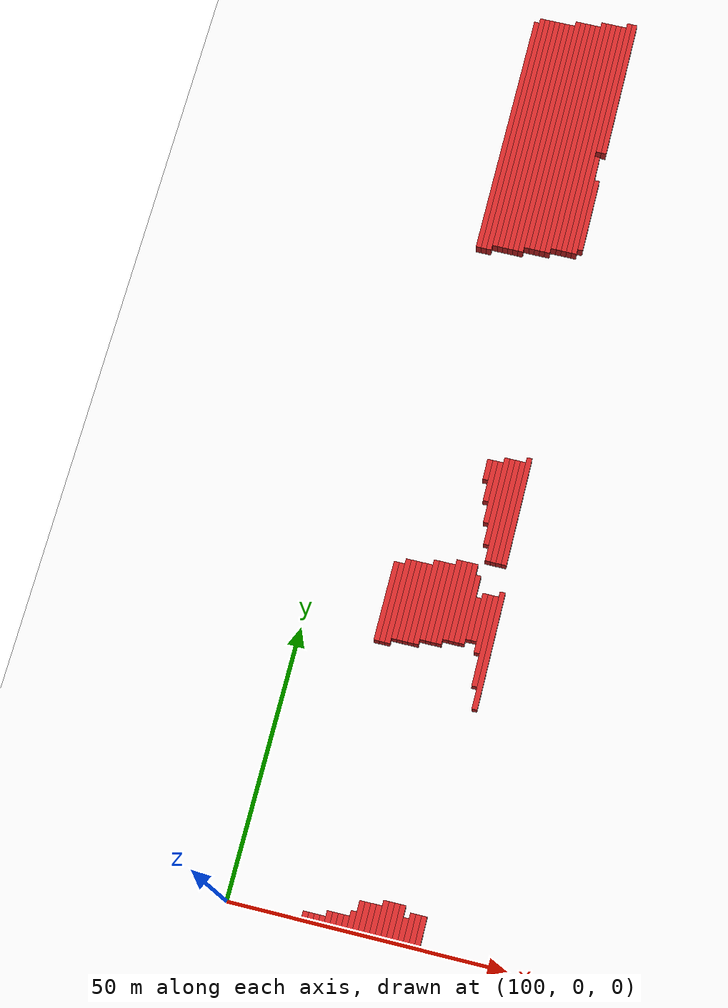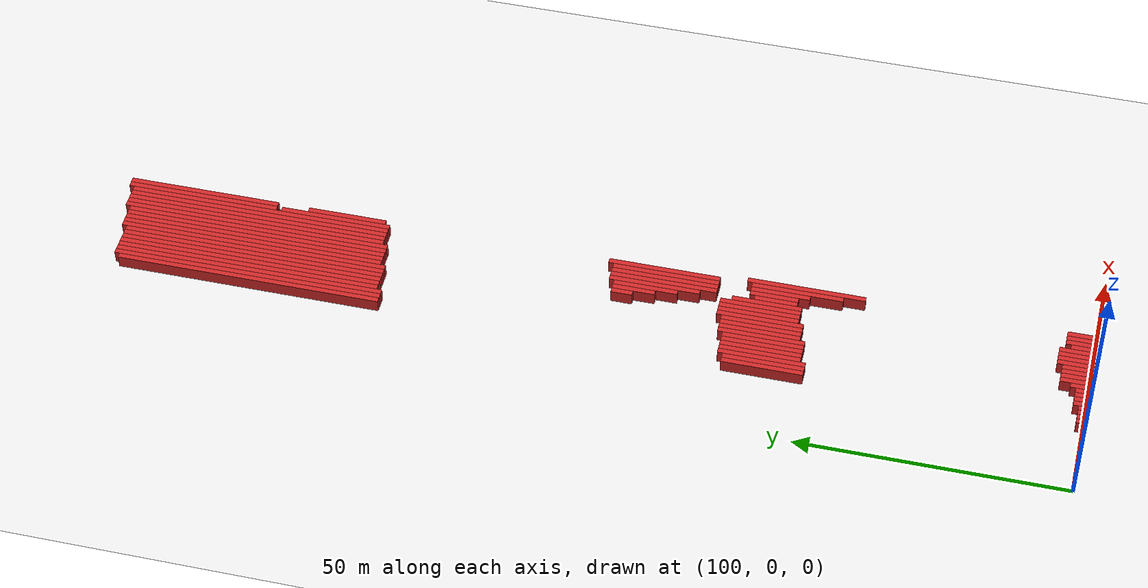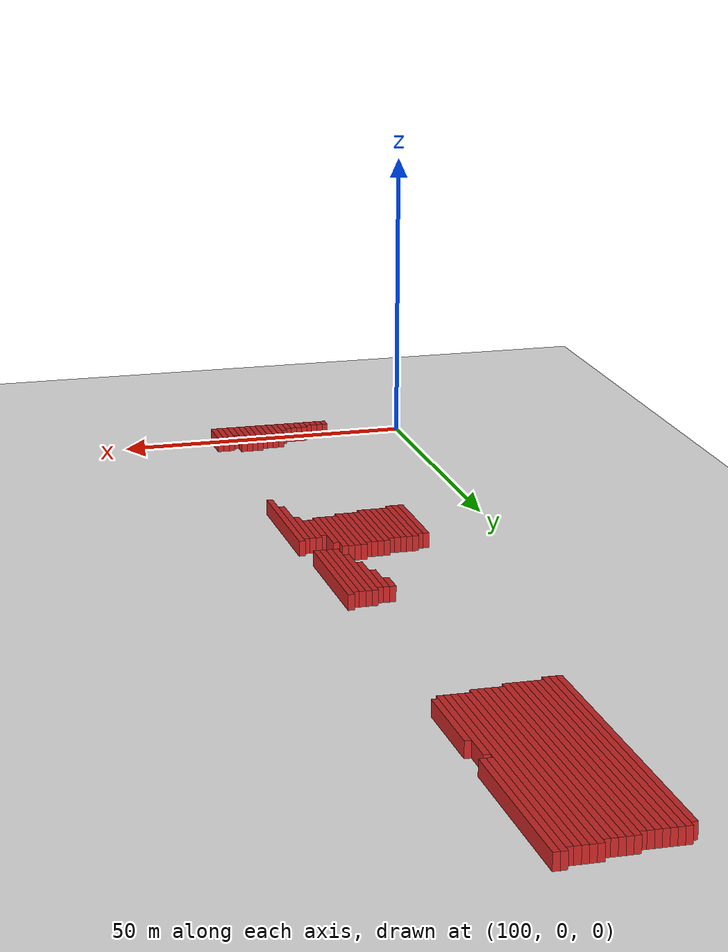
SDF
<sdf version="1.4">
 <world name="1_wall">
  <model name="ground_plane">
   <static>1</static>
   <link name="link">
    <collision name="collision">
     <geometry><plane><normal>0 0 1</normal><size>1000 1000</size></plane></geometry>
     <surface><friction><ode><mu>100</mu><mu2>50</mu2></ode></friction></surface>
    </collision>
    <visual name="visual">
     <cast_shadows>0</cast_shadows>
     <geometry><plane><normal>0 0 1</normal><size>10000 10000</size></plane></geometry>
     <material>
      <script><uri>file://media/materials/scripts/gazebo.material</uri><name>Gazebo/White</name></script>
     </material>
    </visual>
    <velocity_decay><linear>0</linear><angular>0</angular></velocity_decay>
   </link>
  </model>
  <model name="Wall_215">
   <static>1</static>
   <link name="Wall_215">
    <collision name="Wall_Collision_215">
     <geometry><box><size>2.0 1.0 2.5</size></box></geometry>
     <pose>0 0 1.25 0 -0 0</pose>
    </collision>
    <visual name="Wall_Visual_215">
     <pose>0 0 1.25 0 -0 0</pose>
     <geometry><box><size>2.0 1.0 2.5</size></box></geometry>
     <material>
      <script><uri>file://media/materials/scripts/gazebo.material</uri><name>Gazebo/Red</name></script>
     </material>
    </visual>
    <velocity_decay><linear>0</linear><angular>0</angular></velocity_decay>
    <pose>114.0 0.5 0 0 0 1.5707963267948966</pose>
   </link>
  </model>
  <model name="Wall_216">
   <static>1</static>
   <link name="Wall_216">
    <collision name="Wall_Collision_216">
     <geometry><box><size>15.0 1.0 2.5</size></box></geometry>
     <pose>0 0 1.25 0 -0 0</pose>
    </collision>
    <visual name="Wall_Visual_216">
     <pose>0 0 1.25 0 -0 0</pose>
     <geometry><box><size>15.0 1.0 2.5</size></box></geometry>
     <material>
      <script><uri>file://media/materials/scripts/gazebo.material</uri><name>Gazebo/Red</name></script>
     </material>
    </visual>
    <velocity_decay><linear>0</linear><angular>0</angular></velocity_decay>
    <pose>114.0 58.0 0 0 0 1.5707963267948966</pose>
   </link>
  </model>
  <model name="Wall_217">
   <static>1</static>
   <link name="Wall_217">
    <collision name="Wall_Collision_217">
     <geometry><box><size>50.0 1.0 2.5</size></box></geometry>
     <pose>0 0 1.25 0 -0 0</pose>
    </collision>
    <visual name="Wall_Visual_217">
     <pose>0 0 1.25 0 -0 0</pose>
     <geometry><box><size>50.0 1.0 2.5</size></box></geometry>
     <material>
      <script><uri>file://media/materials/scripts/gazebo.material</uri><name>Gazebo/Red</name></script>
     </material>
    </visual>
    <velocity_decay><linear>0</linear><angular>0</angular></velocity_decay>
    <pose>114.0 154.5 0 0 0 1.5707963267948966</pose>
   </link>
  </model>
  <model name="Wall_218">
   <static>1</static>
   <link name="Wall_218">
    <collision name="Wall_Collision_218">
     <geometry><box><size>2.0 1.0 2.5</size></box></geometry>
     <pose>0 0 1.25 0 -0 0</pose>
    </collision>
    <visual name="Wall_Visual_218">
     <pose>0 0 1.25 0 -0 0</pose>
     <geometry><box><size>2.0 1.0 2.5</size></box></geometry>
     <material>
      <script><uri>file://media/materials/scripts/gazebo.material</uri><name>Gazebo/Red</name></script>
     </material>
    </visual>
    <velocity_decay><linear>0</linear><angular>0</angular></velocity_decay>
    <pose>115.0 0.5 0 0 0 1.5707963267948966</pose>
   </link>
  </model>
  <model name="Wall_219">
   <static>1</static>
   <link name="Wall_219">
    <collision name="Wall_Collision_219">
     <geometry><box><size>15.0 1.0 2.5</size></box></geometry>
     <pose>0 0 1.25 0 -0 0</pose>
    </collision>
    <visual name="Wall_Visual_219">
     <pose>0 0 1.25 0 -0 0</pose>
     <geometry><box><size>15.0 1.0 2.5</size></box></geometry>
     <material>
      <script><uri>file://media/materials/scripts/gazebo.material</uri><name>Gazebo/Red</name></script>
     </material>
    </visual>
    <velocity_decay><linear>0</linear><angular>0</angular></velocity_decay>
    <pose>115.0 58.0 0 0 0 1.5707963267948966</pose>
   </link>
  </model>
  <model name="Wall_220">
   <static>1</static>
   <link name="Wall_220">
    <collision name="Wall_Collision_220">
     <geometry><box><size>51.0 1.0 2.5</size></box></geometry>
     <pose>0 0 1.25 0 -0 0</pose>
    </collision>
    <visual name="Wall_Visual_220">
     <pose>0 0 1.25 0 -0 0</pose>
     <geometry><box><size>51.0 1.0 2.5</size></box></geometry>
     <material>
      <script><uri>file://media/materials/scripts/gazebo.material</uri><name>Gazebo/Red</name></script>
     </material>
    </visual>
    <velocity_decay><linear>0</linear><angular>0</angular></velocity_decay>
    <pose>115.0 155.0 0 0 0 1.5707963267948966</pose>
   </link>
  </model>
  <model name="Wall_221">
   <static>1</static>
   <link name="Wall_221">
    <collision name="Wall_Collision_221">
     <geometry><box><size>2.0 1.0 2.5</size></box></geometry>
     <pose>0 0 1.25 0 -0 0</pose>
    </collision>
    <visual name="Wall_Visual_221">
     <pose>0 0 1.25 0 -0 0</pose>
     <geometry><box><size>2.0 1.0 2.5</size></box></geometry>
     <material>
      <script><uri>file://media/materials/scripts/gazebo.material</uri><name>Gazebo/Red</name></script>
     </material>
    </visual>
    <velocity_decay><linear>0</linear><angular>0</angular></velocity_decay>
    <pose>116.0 0.5 0 0 0 1.5707963267948966</pose>
   </link>
  </model>
  <model name="Wall_222">
   <static>1</static>
   <link name="Wall_222">
    <collision name="Wall_Collision_222">
     <geometry><box><size>16.0 1.0 2.5</size></box></geometry>
     <pose>0 0 1.25 0 -0 0</pose>
    </collision>
    <visual name="Wall_Visual_222">
     <pose>0 0 1.25 0 -0 0</pose>
     <geometry><box><size>16.0 1.0 2.5</size></box></geometry>
     <material>
      <script><uri>file://media/materials/scripts/gazebo.material</uri><name>Gazebo/Red</name></script>
     </material>
    </visual>
    <velocity_decay><linear>0</linear><angular>0</angular></velocity_decay>
    <pose>116.0 58.5 0 0 0 1.5707963267948966</pose>
   </link>
  </model>
  <model name="Wall_223">
   <static>1</static>
   <link name="Wall_223">
    <collision name="Wall_Collision_223">
     <geometry><box><size>51.0 1.0 2.5</size></box></geometry>
     <pose>0 0 1.25 0 -0 0</pose>
    </collision>
    <visual name="Wall_Visual_223">
     <pose>0 0 1.25 0 -0 0</pose>
     <geometry><box><size>51.0 1.0 2.5</size></box></geometry>
     <material>
      <script><uri>file://media/materials/scripts/gazebo.material</uri><name>Gazebo/Red</name></script>
     </material>
    </visual>
    <velocity_decay><linear>0</linear><angular>0</angular></velocity_decay>
    <pose>116.0 155.0 0 0 0 1.5707963267948966</pose>
   </link>
  </model>
  <model name="Wall_224">
   <static>1</static>
   <link name="Wall_224">
    <collision name="Wall_Collision_224">
     <geometry><box><size>2.0 1.0 2.5</size></box></geometry>
     <pose>0 0 1.25 0 -0 0</pose>
    </collision>
    <visual name="Wall_Visual_224">
     <pose>0 0 1.25 0 -0 0</pose>
     <geometry><box><size>2.0 1.0 2.5</size></box></geometry>
     <material>
      <script><uri>file://media/materials/scripts/gazebo.material</uri><name>Gazebo/Red</name></script>
     </material>
    </visual>
    <velocity_decay><linear>0</linear><angular>0</angular></velocity_decay>
    <pose>117.0 0.5 0 0 0 1.5707963267948966</pose>
   </link>
  </model>
  <model name="Wall_225">
   <static>1</static>
   <link name="Wall_225">
    <collision name="Wall_Collision_225">
     <geometry><box><size>15.0 1.0 2.5</size></box></geometry>
     <pose>0 0 1.25 0 -0 0</pose>
    </collision>
    <visual name="Wall_Visual_225">
     <pose>0 0 1.25 0 -0 0</pose>
     <geometry><box><size>15.0 1.0 2.5</size></box></geometry>
     <material>
      <script><uri>file://media/materials/scripts/gazebo.material</uri><name>Gazebo/Red</name></script>
     </material>
    </visual>
    <velocity_decay><linear>0</linear><angular>0</angular></velocity_decay>
    <pose>117.0 59.0 0 0 0 1.5707963267948966</pose>
   </link>
  </model>
  <model name="Wall_226">
   <static>1</static>
   <link name="Wall_226">
    <collision name="Wall_Collision_226">
     <geometry><box><size>50.0 1.0 2.5</size></box></geometry>
     <pose>0 0 1.25 0 -0 0</pose>
    </collision>
    <visual name="Wall_Visual_226">
     <pose>0 0 1.25 0 -0 0</pose>
     <geometry><box><size>50.0 1.0 2.5</size></box></geometry>
     <material>
      <script><uri>file://media/materials/scripts/gazebo.material</uri><name>Gazebo/Red</name></script>
     </material>
    </visual>
    <velocity_decay><linear>0</linear><angular>0</angular></velocity_decay>
    <pose>117.0 155.5 0 0 0 1.5707963267948966</pose>
   </link>
  </model>
  <model name="Wall_227">
   <static>1</static>
   <link name="Wall_227">
    <collision name="Wall_Collision_227">
     <geometry><box><size>3.0 1.0 2.5</size></box></geometry>
     <pose>0 0 1.25 0 -0 0</pose>
    </collision>
    <visual name="Wall_Visual_227">
     <pose>0 0 1.25 0 -0 0</pose>
     <geometry><box><size>3.0 1.0 2.5</size></box></geometry>
     <material>
      <script><uri>file://media/materials/scripts/gazebo.material</uri><name>Gazebo/Red</name></script>
     </material>
    </visual>
    <velocity_decay><linear>0</linear><angular>0</angular></velocity_decay>
    <pose>118.0 1.0 0 0 0 1.5707963267948966</pose>
   </link>
  </model>
  <model name="Wall_228">
   <static>1</static>
   <link name="Wall_228">
    <collision name="Wall_Collision_228">
     <geometry><box><size>15.0 1.0 2.5</size></box></geometry>
     <pose>0 0 1.25 0 -0 0</pose>
    </collision>
    <visual name="Wall_Visual_228">
     <pose>0 0 1.25 0 -0 0</pose>
     <geometry><box><size>15.0 1.0 2.5</size></box></geometry>
     <material>
      <script><uri>file://media/materials/scripts/gazebo.material</uri><name>Gazebo/Red</name></script>
     </material>
    </visual>
    <velocity_decay><linear>0</linear><angular>0</angular></velocity_decay>
    <pose>118.0 59.0 0 0 0 1.5707963267948966</pose>
   </link>
  </model>
  <model name="Wall_229">
   <static>1</static>
   <link name="Wall_229">
    <collision name="Wall_Collision_229">
     <geometry><box><size>50.0 1.0 2.5</size></box></geometry>
     <pose>0 0 1.25 0 -0 0</pose>
    </collision>
    <visual name="Wall_Visual_229">
     <pose>0 0 1.25 0 -0 0</pose>
     <geometry><box><size>50.0 1.0 2.5</size></box></geometry>
     <material>
      <script><uri>file://media/materials/scripts/gazebo.material</uri><name>Gazebo/Red</name></script>
     </material>
    </visual>
    <velocity_decay><linear>0</linear><angular>0</angular></velocity_decay>
    <pose>118.0 155.5 0 0 0 1.5707963267948966</pose>
   </link>
  </model>
  <model name="Wall_230">
   <static>1</static>
   <link name="Wall_230">
    <collision name="Wall_Collision_230">
     <geometry><box><size>3.0 1.0 2.5</size></box></geometry>
     <pose>0 0 1.25 0 -0 0</pose>
    </collision>
    <visual name="Wall_Visual_230">
     <pose>0 0 1.25 0 -0 0</pose>
     <geometry><box><size>3.0 1.0 2.5</size></box></geometry>
     <material>
      <script><uri>file://media/materials/scripts/gazebo.material</uri><name>Gazebo/Red</name></script>
     </material>
    </visual>
    <velocity_decay><linear>0</linear><angular>0</angular></velocity_decay>
    <pose>119.0 1.0 0 0 0 1.5707963267948966</pose>
   </link>
  </model>
  <model name="Wall_231">
   <static>1</static>
   <link name="Wall_231">
    <collision name="Wall_Collision_231">
     <geometry><box><size>15.0 1.0 2.5</size></box></geometry>
     <pose>0 0 1.25 0 -0 0</pose>
    </collision>
    <visual name="Wall_Visual_231">
     <pose>0 0 1.25 0 -0 0</pose>
     <geometry><box><size>15.0 1.0 2.5</size></box></geometry>
     <material>
      <script><uri>file://media/materials/scripts/gazebo.material</uri><name>Gazebo/Red</name></script>
     </material>
    </visual>
    <velocity_decay><linear>0</linear><angular>0</angular></velocity_decay>
    <pose>119.0 59.0 0 0 0 1.5707963267948966</pose>
   </link>
  </model>
  <model name="Wall_232">
   <static>1</static>
   <link name="Wall_232">
    <collision name="Wall_Collision_232">
     <geometry><box><size>50.0 1.0 2.5</size></box></geometry>
     <pose>0 0 1.25 0 -0 0</pose>
    </collision>
    <visual name="Wall_Visual_232">
     <pose>0 0 1.25 0 -0 0</pose>
     <geometry><box><size>50.0 1.0 2.5</size></box></geometry>
     <material>
      <script><uri>file://media/materials/scripts/gazebo.material</uri><name>Gazebo/Red</name></script>
     </material>
    </visual>
    <velocity_decay><linear>0</linear><angular>0</angular></velocity_decay>
    <pose>119.0 155.5 0 0 0 1.5707963267948966</pose>
   </link>
  </model>
  <model name="Wall_233">
   <static>1</static>
   <link name="Wall_233">
    <collision name="Wall_Collision_233">
     <geometry><box><size>3.0 1.0 2.5</size></box></geometry>
     <pose>0 0 1.25 0 -0 0</pose>
    </collision>
    <visual name="Wall_Visual_233">
     <pose>0 0 1.25 0 -0 0</pose>
     <geometry><box><size>3.0 1.0 2.5</size></box></geometry>
     <material>
      <script><uri>file://media/materials/scripts/gazebo.material</uri><name>Gazebo/Red</name></script>
     </material>
    </visual>
    <velocity_decay><linear>0</linear><angular>0</angular></velocity_decay>
    <pose>120.0 1.0 0 0 0 1.5707963267948966</pose>
   </link>
  </model>
  <model name="Wall_234">
   <static>1</static>
   <link name="Wall_234">
    <collision name="Wall_Collision_234">
     <geometry><box><size>15.0 1.0 2.5</size></box></geometry>
     <pose>0 0 1.25 0 -0 0</pose>
    </collision>
    <visual name="Wall_Visual_234">
     <pose>0 0 1.25 0 -0 0</pose>
     <geometry><box><size>15.0 1.0 2.5</size></box></geometry>
     <material>
      <script><uri>file://media/materials/scripts/gazebo.material</uri><name>Gazebo/Red</name></script>
     </material>
    </visual>
    <velocity_decay><linear>0</linear><angular>0</angular></velocity_decay>
    <pose>120.0 59.0 0 0 0 1.5707963267948966</pose>
   </link>
  </model>
  <model name="Wall_235">
   <static>1</static>
   <link name="Wall_235">
    <collision name="Wall_Collision_235">
     <geometry><box><size>50.0 1.0 2.5</size></box></geometry>
     <pose>0 0 1.25 0 -0 0</pose>
    </collision>
    <visual name="Wall_Visual_235">
     <pose>0 0 1.25 0 -0 0</pose>
     <geometry><box><size>50.0 1.0 2.5</size></box></geometry>
     <material>
      <script><uri>file://media/materials/scripts/gazebo.material</uri><name>Gazebo/Red</name></script>
     </material>
    </visual>
    <velocity_decay><linear>0</linear><angular>0</angular></velocity_decay>
    <pose>120.0 155.5 0 0 0 1.5707963267948966</pose>
   </link>
  </model>
  <model name="Wall_236">
   <static>1</static>
   <link name="Wall_236">
    <collision name="Wall_Collision_236">
     <geometry><box><size>3.0 1.0 2.5</size></box></geometry>
     <pose>0 0 1.25 0 -0 0</pose>
    </collision>
    <visual name="Wall_Visual_236">
     <pose>0 0 1.25 0 -0 0</pose>
     <geometry><box><size>3.0 1.0 2.5</size></box></geometry>
     <material>
      <script><uri>file://media/materials/scripts/gazebo.material</uri><name>Gazebo/Red</name></script>
     </material>
    </visual>
    <velocity_decay><linear>0</linear><angular>0</angular></velocity_decay>
    <pose>121.0 1.0 0 0 0 1.5707963267948966</pose>
   </link>
  </model>
  <model name="Wall_237">
   <static>1</static>
   <link name="Wall_237">
    <collision name="Wall_Collision_237">
     <geometry><box><size>16.0 1.0 2.5</size></box></geometry>
     <pose>0 0 1.25 0 -0 0</pose>
    </collision>
    <visual name="Wall_Visual_237">
     <pose>0 0 1.25 0 -0 0</pose>
     <geometry><box><size>16.0 1.0 2.5</size></box></geometry>
     <material>
      <script><uri>file://media/materials/scripts/gazebo.material</uri><name>Gazebo/Red</name></script>
     </material>
    </visual>
    <velocity_decay><linear>0</linear><angular>0</angular></velocity_decay>
    <pose>121.0 59.5 0 0 0 1.5707963267948966</pose>
   </link>
  </model>
  <model name="Wall_238">
   <static>1</static>
   <link name="Wall_238">
    <collision name="Wall_Collision_238">
     <geometry><box><size>50.0 1.0 2.5</size></box></geometry>
     <pose>0 0 1.25 0 -0 0</pose>
    </collision>
    <visual name="Wall_Visual_238">
     <pose>0 0 1.25 0 -0 0</pose>
     <geometry><box><size>50.0 1.0 2.5</size></box></geometry>
     <material>
      <script><uri>file://media/materials/scripts/gazebo.material</uri><name>Gazebo/Red</name></script>
     </material>
    </visual>
    <velocity_decay><linear>0</linear><angular>0</angular></velocity_decay>
    <pose>121.0 155.5 0 0 0 1.5707963267948966</pose>
   </link>
  </model>
  <model name="Wall_239">
   <static>1</static>
   <link name="Wall_239">
    <collision name="Wall_Collision_239">
     <geometry><box><size>4.0 1.0 2.5</size></box></geometry>
     <pose>0 0 1.25 0 -0 0</pose>
    </collision>
    <visual name="Wall_Visual_239">
     <pose>0 0 1.25 0 -0 0</pose>
     <geometry><box><size>4.0 1.0 2.5</size></box></geometry>
     <material>
      <script><uri>file://media/materials/scripts/gazebo.material</uri><name>Gazebo/Red</name></script>
     </material>
    </visual>
    <velocity_decay><linear>0</linear><angular>0</angular></velocity_decay>
    <pose>122.0 1.5 0 0 0 1.5707963267948966</pose>
   </link>
  </model>
  <model name="Wall_240">
   <static>1</static>
   <link name="Wall_240">
    <collision name="Wall_Collision_240">
     <geometry><box><size>15.0 1.0 2.5</size></box></geometry>
     <pose>0 0 1.25 0 -0 0</pose>
    </collision>
    <visual name="Wall_Visual_240">
     <pose>0 0 1.25 0 -0 0</pose>
     <geometry><box><size>15.0 1.0 2.5</size></box></geometry>
     <material>
      <script><uri>file://media/materials/scripts/gazebo.material</uri><name>Gazebo/Red</name></script>
     </material>
    </visual>
    <velocity_decay><linear>0</linear><angular>0</angular></velocity_decay>
    <pose>122.0 60.0 0 0 0 1.5707963267948966</pose>
   </link>
  </model>
  <model name="Wall_241">
   <static>1</static>
   <link name="Wall_241">
    <collision name="Wall_Collision_241">
     <geometry><box><size>51.0 1.0 2.5</size></box></geometry>
     <pose>0 0 1.25 0 -0 0</pose>
    </collision>
    <visual name="Wall_Visual_241">
     <pose>0 0 1.25 0 -0 0</pose>
     <geometry><box><size>51.0 1.0 2.5</size></box></geometry>
     <material>
      <script><uri>file://media/materials/scripts/gazebo.material</uri><name>Gazebo/Red</name></script>
     </material>
    </visual>
    <velocity_decay><linear>0</linear><angular>0</angular></velocity_decay>
    <pose>122.0 156.0 0 0 0 1.5707963267948966</pose>
   </link>
  </model>
  <model name="Wall_242">
   <static>1</static>
   <link name="Wall_242">
    <collision name="Wall_Collision_242">
     <geometry><box><size>6.0 1.0 2.5</size></box></geometry>
     <pose>0 0 1.25 0 -0 0</pose>
    </collision>
    <visual name="Wall_Visual_242">
     <pose>0 0 1.25 0 -0 0</pose>
     <geometry><box><size>6.0 1.0 2.5</size></box></geometry>
     <material>
      <script><uri>file://media/materials/scripts/gazebo.material</uri><name>Gazebo/Red</name></script>
     </material>
    </visual>
    <velocity_decay><linear>0</linear><angular>0</angular></velocity_decay>
    <pose>123.0 2.5 0 0 0 1.5707963267948966</pose>
   </link>
  </model>
  <model name="Wall_243">
   <static>1</static>
   <link name="Wall_243">
    <collision name="Wall_Collision_243">
     <geometry><box><size>15.0 1.0 2.5</size></box></geometry>
     <pose>0 0 1.25 0 -0 0</pose>
    </collision>
    <visual name="Wall_Visual_243">
     <pose>0 0 1.25 0 -0 0</pose>
     <geometry><box><size>15.0 1.0 2.5</size></box></geometry>
     <material>
      <script><uri>file://media/materials/scripts/gazebo.material</uri><name>Gazebo/Red</name></script>
     </material>
    </visual>
    <velocity_decay><linear>0</linear><angular>0</angular></velocity_decay>
    <pose>123.0 60.0 0 0 0 1.5707963267948966</pose>
   </link>
  </model>
  <model name="Wall_244">
   <static>1</static>
   <link name="Wall_244">
    <collision name="Wall_Collision_244">
     <geometry><box><size>50.0 1.0 2.5</size></box></geometry>
     <pose>0 0 1.25 0 -0 0</pose>
    </collision>
    <visual name="Wall_Visual_244">
     <pose>0 0 1.25 0 -0 0</pose>
     <geometry><box><size>50.0 1.0 2.5</size></box></geometry>
     <material>
      <script><uri>file://media/materials/scripts/gazebo.material</uri><name>Gazebo/Red</name></script>
     </material>
    </visual>
    <velocity_decay><linear>0</linear><angular>0</angular></velocity_decay>
    <pose>123.0 156.5 0 0 0 1.5707963267948966</pose>
   </link>
  </model>
  <model name="Wall_245">
   <static>1</static>
   <link name="Wall_245">
    <collision name="Wall_Collision_245">
     <geometry><box><size>6.0 1.0 2.5</size></box></geometry>
     <pose>0 0 1.25 0 -0 0</pose>
    </collision>
    <visual name="Wall_Visual_245">
     <pose>0 0 1.25 0 -0 0</pose>
     <geometry><box><size>6.0 1.0 2.5</size></box></geometry>
     <material>
      <script><uri>file://media/materials/scripts/gazebo.material</uri><name>Gazebo/Red</name></script>
     </material>
    </visual>
    <velocity_decay><linear>0</linear><angular>0</angular></velocity_decay>
    <pose>124.0 2.5 0 0 0 1.5707963267948966</pose>
   </link>
  </model>
  <model name="Wall_246">
   <static>1</static>
   <link name="Wall_246">
    <collision name="Wall_Collision_246">
     <geometry><box><size>15.0 1.0 2.5</size></box></geometry>
     <pose>0 0 1.25 0 -0 0</pose>
    </collision>
    <visual name="Wall_Visual_246">
     <pose>0 0 1.25 0 -0 0</pose>
     <geometry><box><size>15.0 1.0 2.5</size></box></geometry>
     <material>
      <script><uri>file://media/materials/scripts/gazebo.material</uri><name>Gazebo/Red</name></script>
     </material>
    </visual>
    <velocity_decay><linear>0</linear><angular>0</angular></velocity_decay>
    <pose>124.0 60.0 0 0 0 1.5707963267948966</pose>
   </link>
  </model>
  <model name="Wall_247">
   <static>1</static>
   <link name="Wall_247">
    <collision name="Wall_Collision_247">
     <geometry><box><size>50.0 1.0 2.5</size></box></geometry>
     <pose>0 0 1.25 0 -0 0</pose>
    </collision>
    <visual name="Wall_Visual_247">
     <pose>0 0 1.25 0 -0 0</pose>
     <geometry><box><size>50.0 1.0 2.5</size></box></geometry>
     <material>
      <script><uri>file://media/materials/scripts/gazebo.material</uri><name>Gazebo/Red</name></script>
     </material>
    </visual>
    <velocity_decay><linear>0</linear><angular>0</angular></velocity_decay>
    <pose>124.0 156.5 0 0 0 1.5707963267948966</pose>
   </link>
  </model>
  <model name="Wall_248">
   <static>1</static>
   <link name="Wall_248">
    <collision name="Wall_Collision_248">
     <geometry><box><size>6.0 1.0 2.5</size></box></geometry>
     <pose>0 0 1.25 0 -0 0</pose>
    </collision>
    <visual name="Wall_Visual_248">
     <pose>0 0 1.25 0 -0 0</pose>
     <geometry><box><size>6.0 1.0 2.5</size></box></geometry>
     <material>
      <script><uri>file://media/materials/scripts/gazebo.material</uri><name>Gazebo/Red</name></script>
     </material>
    </visual>
    <velocity_decay><linear>0</linear><angular>0</angular></velocity_decay>
    <pose>125.0 2.5 0 0 0 1.5707963267948966</pose>
   </link>
  </model>
  <model name="Wall_249">
   <static>1</static>
   <link name="Wall_249">
    <collision name="Wall_Collision_249">
     <geometry><box><size>16.0 1.0 2.5</size></box></geometry>
     <pose>0 0 1.25 0 -0 0</pose>
    </collision>
    <visual name="Wall_Visual_249">
     <pose>0 0 1.25 0 -0 0</pose>
     <geometry><box><size>16.0 1.0 2.5</size></box></geometry>
     <material>
      <script><uri>file://media/materials/scripts/gazebo.material</uri><name>Gazebo/Red</name></script>
     </material>
    </visual>
    <velocity_decay><linear>0</linear><angular>0</angular></velocity_decay>
    <pose>125.0 60.5 0 0 0 1.5707963267948966</pose>
   </link>
  </model>
  <model name="Wall_250">
   <static>1</static>
   <link name="Wall_250">
    <collision name="Wall_Collision_250">
     <geometry><box><size>50.0 1.0 2.5</size></box></geometry>
     <pose>0 0 1.25 0 -0 0</pose>
    </collision>
    <visual name="Wall_Visual_250">
     <pose>0 0 1.25 0 -0 0</pose>
     <geometry><box><size>50.0 1.0 2.5</size></box></geometry>
     <material>
      <script><uri>file://media/materials/scripts/gazebo.material</uri><name>Gazebo/Red</name></script>
     </material>
    </visual>
    <velocity_decay><linear>0</linear><angular>0</angular></velocity_decay>
    <pose>125.0 156.5 0 0 0 1.5707963267948966</pose>
   </link>
  </model>
  <model name="Wall_251">
   <static>1</static>
   <link name="Wall_251">
    <collision name="Wall_Collision_251">
     <geometry><box><size>6.0 1.0 2.5</size></box></geometry>
     <pose>0 0 1.25 0 -0 0</pose>
    </collision>
    <visual name="Wall_Visual_251">
     <pose>0 0 1.25 0 -0 0</pose>
     <geometry><box><size>6.0 1.0 2.5</size></box></geometry>
     <material>
      <script><uri>file://media/materials/scripts/gazebo.material</uri><name>Gazebo/Red</name></script>
     </material>
    </visual>
    <velocity_decay><linear>0</linear><angular>0</angular></velocity_decay>
    <pose>126.0 2.5 0 0 0 1.5707963267948966</pose>
   </link>
  </model>
  <model name="Wall_252">
   <static>1</static>
   <link name="Wall_252">
    <collision name="Wall_Collision_252">
     <geometry><box><size>15.0 1.0 2.5</size></box></geometry>
     <pose>0 0 1.25 0 -0 0</pose>
    </collision>
    <visual name="Wall_Visual_252">
     <pose>0 0 1.25 0 -0 0</pose>
     <geometry><box><size>15.0 1.0 2.5</size></box></geometry>
     <material>
      <script><uri>file://media/materials/scripts/gazebo.material</uri><name>Gazebo/Red</name></script>
     </material>
    </visual>
    <velocity_decay><linear>0</linear><angular>0</angular></velocity_decay>
    <pose>126.0 61.0 0 0 0 1.5707963267948966</pose>
   </link>
  </model>
  <model name="Wall_253">
   <static>1</static>
   <link name="Wall_253">
    <collision name="Wall_Collision_253">
     <geometry><box><size>4.0 1.0 2.5</size></box></geometry>
     <pose>0 0 1.25 0 -0 0</pose>
    </collision>
    <visual name="Wall_Visual_253">
     <pose>0 0 1.25 0 -0 0</pose>
     <geometry><box><size>4.0 1.0 2.5</size></box></geometry>
     <material>
      <script><uri>file://media/materials/scripts/gazebo.material</uri><name>Gazebo/Red</name></script>
     </material>
    </visual>
    <velocity_decay><linear>0</linear><angular>0</angular></velocity_decay>
    <pose>126.0 86.5 0 0 0 1.5707963267948966</pose>
   </link>
  </model>
  <model name="Wall_254">
   <static>1</static>
   <link name="Wall_254">
    <collision name="Wall_Collision_254">
     <geometry><box><size>50.0 1.0 2.5</size></box></geometry>
     <pose>0 0 1.25 0 -0 0</pose>
    </collision>
    <visual name="Wall_Visual_254">
     <pose>0 0 1.25 0 -0 0</pose>
     <geometry><box><size>50.0 1.0 2.5</size></box></geometry>
     <material>
      <script><uri>file://media/materials/scripts/gazebo.material</uri><name>Gazebo/Red</name></script>
     </material>
    </visual>
    <velocity_decay><linear>0</linear><angular>0</angular></velocity_decay>
    <pose>126.0 156.5 0 0 0 1.5707963267948966</pose>
   </link>
  </model>
  <model name="Wall_255">
   <static>1</static>
   <link name="Wall_255">
    <collision name="Wall_Collision_255">
     <geometry><box><size>7.0 1.0 2.5</size></box></geometry>
     <pose>0 0 1.25 0 -0 0</pose>
    </collision>
    <visual name="Wall_Visual_255">
     <pose>0 0 1.25 0 -0 0</pose>
     <geometry><box><size>7.0 1.0 2.5</size></box></geometry>
     <material>
      <script><uri>file://media/materials/scripts/gazebo.material</uri><name>Gazebo/Red</name></script>
     </material>
    </visual>
    <velocity_decay><linear>0</linear><angular>0</angular></velocity_decay>
    <pose>127.0 3.0 0 0 0 1.5707963267948966</pose>
   </link>
  </model>
  <model name="Wall_256">
   <static>1</static>
   <link name="Wall_256">
    <collision name="Wall_Collision_256">
     <geometry><box><size>15.0 1.0 2.5</size></box></geometry>
     <pose>0 0 1.25 0 -0 0</pose>
    </collision>
    <visual name="Wall_Visual_256">
     <pose>0 0 1.25 0 -0 0</pose>
     <geometry><box><size>15.0 1.0 2.5</size></box></geometry>
     <material>
      <script><uri>file://media/materials/scripts/gazebo.material</uri><name>Gazebo/Red</name></script>
     </material>
    </visual>
    <velocity_decay><linear>0</linear><angular>0</angular></velocity_decay>
    <pose>127.0 61.0 0 0 0 1.5707963267948966</pose>
   </link>
  </model>
  <model name="Wall_257">
   <static>1</static>
   <link name="Wall_257">
    <collision name="Wall_Collision_257">
     <geometry><box><size>8.0 1.0 2.5</size></box></geometry>
     <pose>0 0 1.25 0 -0 0</pose>
    </collision>
    <visual name="Wall_Visual_257">
     <pose>0 0 1.25 0 -0 0</pose>
     <geometry><box><size>8.0 1.0 2.5</size></box></geometry>
     <material>
      <script><uri>file://media/materials/scripts/gazebo.material</uri><name>Gazebo/Red</name></script>
     </material>
    </visual>
    <velocity_decay><linear>0</linear><angular>0</angular></velocity_decay>
    <pose>127.0 84.5 0 0 0 1.5707963267948966</pose>
   </link>
  </model>
  <model name="Wall_258">
   <static>1</static>
   <link name="Wall_258">
    <collision name="Wall_Collision_258">
     <geometry><box><size>51.0 1.0 2.5</size></box></geometry>
     <pose>0 0 1.25 0 -0 0</pose>
    </collision>
    <visual name="Wall_Visual_258">
     <pose>0 0 1.25 0 -0 0</pose>
     <geometry><box><size>51.0 1.0 2.5</size></box></geometry>
     <material>
      <script><uri>file://media/materials/scripts/gazebo.material</uri><name>Gazebo/Red</name></script>
     </material>
    </visual>
    <velocity_decay><linear>0</linear><angular>0</angular></velocity_decay>
    <pose>127.0 157.0 0 0 0 1.5707963267948966</pose>
   </link>
  </model>
  <model name="Wall_259">
   <static>1</static>
   <link name="Wall_259">
    <collision name="Wall_Collision_259">
     <geometry><box><size>7.0 1.0 2.5</size></box></geometry>
     <pose>0 0 1.25 0 -0 0</pose>
    </collision>
    <visual name="Wall_Visual_259">
     <pose>0 0 1.25 0 -0 0</pose>
     <geometry><box><size>7.0 1.0 2.5</size></box></geometry>
     <material>
      <script><uri>file://media/materials/scripts/gazebo.material</uri><name>Gazebo/Red</name></script>
     </material>
    </visual>
    <velocity_decay><linear>0</linear><angular>0</angular></velocity_decay>
    <pose>128.0 3.0 0 0 0 1.5707963267948966</pose>
   </link>
  </model>
  <model name="Wall_260">
   <static>1</static>
   <link name="Wall_260">
    <collision name="Wall_Collision_260">
     <geometry><box><size>15.0 1.0 2.5</size></box></geometry>
     <pose>0 0 1.25 0 -0 0</pose>
    </collision>
    <visual name="Wall_Visual_260">
     <pose>0 0 1.25 0 -0 0</pose>
     <geometry><box><size>15.0 1.0 2.5</size></box></geometry>
     <material>
      <script><uri>file://media/materials/scripts/gazebo.material</uri><name>Gazebo/Red</name></script>
     </material>
    </visual>
    <velocity_decay><linear>0</linear><angular>0</angular></velocity_decay>
    <pose>128.0 61.0 0 0 0 1.5707963267948966</pose>
   </link>
  </model>
  <model name="Wall_261">
   <static>1</static>
   <link name="Wall_261">
    <collision name="Wall_Collision_261">
     <geometry><box><size>12.0 1.0 2.5</size></box></geometry>
     <pose>0 0 1.25 0 -0 0</pose>
    </collision>
    <visual name="Wall_Visual_261">
     <pose>0 0 1.25 0 -0 0</pose>
     <geometry><box><size>12.0 1.0 2.5</size></box></geometry>
     <material>
      <script><uri>file://media/materials/scripts/gazebo.material</uri><name>Gazebo/Red</name></script>
     </material>
    </visual>
    <velocity_decay><linear>0</linear><angular>0</angular></velocity_decay>
    <pose>128.0 82.5 0 0 0 1.5707963267948966</pose>
   </link>
  </model>
  <model name="Wall_262">
   <static>1</static>
   <link name="Wall_262">
    <collision name="Wall_Collision_262">
     <geometry><box><size>50.0 1.0 2.5</size></box></geometry>
     <pose>0 0 1.25 0 -0 0</pose>
    </collision>
    <visual name="Wall_Visual_262">
     <pose>0 0 1.25 0 -0 0</pose>
     <geometry><box><size>50.0 1.0 2.5</size></box></geometry>
     <material>
      <script><uri>file://media/materials/scripts/gazebo.material</uri><name>Gazebo/Red</name></script>
     </material>
    </visual>
    <velocity_decay><linear>0</linear><angular>0</angular></velocity_decay>
    <pose>128.0 157.5 0 0 0 1.5707963267948966</pose>
   </link>
  </model>
  <model name="Wall_263">
   <static>1</static>
   <link name="Wall_263">
    <collision name="Wall_Collision_263">
     <geometry><box><size>7.0 1.0 2.5</size></box></geometry>
     <pose>0 0 1.25 0 -0 0</pose>
    </collision>
    <visual name="Wall_Visual_263">
     <pose>0 0 1.25 0 -0 0</pose>
     <geometry><box><size>7.0 1.0 2.5</size></box></geometry>
     <material>
      <script><uri>file://media/materials/scripts/gazebo.material</uri><name>Gazebo/Red</name></script>
     </material>
    </visual>
    <velocity_decay><linear>0</linear><angular>0</angular></velocity_decay>
    <pose>129.0 3.0 0 0 0 1.5707963267948966</pose>
   </link>
  </model>
  <model name="Wall_264">
   <static>1</static>
   <link name="Wall_264">
    <collision name="Wall_Collision_264">
     <geometry><box><size>13.0 1.0 2.5</size></box></geometry>
     <pose>0 0 1.25 0 -0 0</pose>
    </collision>
    <visual name="Wall_Visual_264">
     <pose>0 0 1.25 0 -0 0</pose>
     <geometry><box><size>13.0 1.0 2.5</size></box></geometry>
     <material>
      <script><uri>file://media/materials/scripts/gazebo.material</uri><name>Gazebo/Red</name></script>
     </material>
    </visual>
    <velocity_decay><linear>0</linear><angular>0</angular></velocity_decay>
    <pose>129.0 60.0 0 0 0 1.5707963267948966</pose>
   </link>
  </model>
  <model name="Wall_265">
   <static>1</static>
   <link name="Wall_265">
    <collision name="Wall_Collision_265">
     <geometry><box><size>17.0 1.0 2.5</size></box></geometry>
     <pose>0 0 1.25 0 -0 0</pose>
    </collision>
    <visual name="Wall_Visual_265">
     <pose>0 0 1.25 0 -0 0</pose>
     <geometry><box><size>17.0 1.0 2.5</size></box></geometry>
     <material>
      <script><uri>file://media/materials/scripts/gazebo.material</uri><name>Gazebo/Red</name></script>
     </material>
    </visual>
    <velocity_decay><linear>0</linear><angular>0</angular></velocity_decay>
    <pose>129.0 81.0 0 0 0 1.5707963267948966</pose>
   </link>
  </model>
  <model name="Wall_266">
   <static>1</static>
   <link name="Wall_266">
    <collision name="Wall_Collision_266">
     <geometry><box><size>50.0 1.0 2.5</size></box></geometry>
     <pose>0 0 1.25 0 -0 0</pose>
    </collision>
    <visual name="Wall_Visual_266">
     <pose>0 0 1.25 0 -0 0</pose>
     <geometry><box><size>50.0 1.0 2.5</size></box></geometry>
     <material>
      <script><uri>file://media/materials/scripts/gazebo.material</uri><name>Gazebo/Red</name></script>
     </material>
    </visual>
    <velocity_decay><linear>0</linear><angular>0</angular></velocity_decay>
    <pose>129.0 157.5 0 0 0 1.5707963267948966</pose>
   </link>
  </model>
  <model name="Wall_267">
   <static>1</static>
   <link name="Wall_267">
    <collision name="Wall_Collision_267">
     <geometry><box><size>7.0 1.0 2.5</size></box></geometry>
     <pose>0 0 1.25 0 -0 0</pose>
    </collision>
    <visual name="Wall_Visual_267">
     <pose>0 0 1.25 0 -0 0</pose>
     <geometry><box><size>7.0 1.0 2.5</size></box></geometry>
     <material>
      <script><uri>file://media/materials/scripts/gazebo.material</uri><name>Gazebo/Red</name></script>
     </material>
    </visual>
    <velocity_decay><linear>0</linear><angular>0</angular></velocity_decay>
    <pose>130.0 3.0 0 0 0 1.5707963267948966</pose>
   </link>
  </model>
  <model name="Wall_268">
   <static>1</static>
   <link name="Wall_268">
    <collision name="Wall_Collision_268">
     <geometry><box><size>8.0 1.0 2.5</size></box></geometry>
     <pose>0 0 1.25 0 -0 0</pose>
    </collision>
    <visual name="Wall_Visual_268">
     <pose>0 0 1.25 0 -0 0</pose>
     <geometry><box><size>8.0 1.0 2.5</size></box></geometry>
     <material>
      <script><uri>file://media/materials/scripts/gazebo.material</uri><name>Gazebo/Red</name></script>
     </material>
    </visual>
    <velocity_decay><linear>0</linear><angular>0</angular></velocity_decay>
    <pose>130.0 58.5 0 0 0 1.5707963267948966</pose>
   </link>
  </model>
  <model name="Wall_269">
   <static>1</static>
   <link name="Wall_269">
    <collision name="Wall_Collision_269">
     <geometry><box><size>20.0 1.0 2.5</size></box></geometry>
     <pose>0 0 1.25 0 -0 0</pose>
    </collision>
    <visual name="Wall_Visual_269">
     <pose>0 0 1.25 0 -0 0</pose>
     <geometry><box><size>20.0 1.0 2.5</size></box></geometry>
     <material>
      <script><uri>file://media/materials/scripts/gazebo.material</uri><name>Gazebo/Red</name></script>
     </material>
    </visual>
    <velocity_decay><linear>0</linear><angular>0</angular></velocity_decay>
    <pose>130.0 79.5 0 0 0 1.5707963267948966</pose>
   </link>
  </model>
  <model name="Wall_270">
   <static>1</static>
   <link name="Wall_270">
    <collision name="Wall_Collision_270">
     <geometry><box><size>50.0 1.0 2.5</size></box></geometry>
     <pose>0 0 1.25 0 -0 0</pose>
    </collision>
    <visual name="Wall_Visual_270">
     <pose>0 0 1.25 0 -0 0</pose>
     <geometry><box><size>50.0 1.0 2.5</size></box></geometry>
     <material>
      <script><uri>file://media/materials/scripts/gazebo.material</uri><name>Gazebo/Red</name></script>
     </material>
    </visual>
    <velocity_decay><linear>0</linear><angular>0</angular></velocity_decay>
    <pose>130.0 157.5 0 0 0 1.5707963267948966</pose>
   </link>
  </model>
  <model name="Wall_271">
   <static>1</static>
   <link name="Wall_271">
    <collision name="Wall_Collision_271">
     <geometry><box><size>5.0 1.0 2.5</size></box></geometry>
     <pose>0 0 1.25 0 -0 0</pose>
    </collision>
    <visual name="Wall_Visual_271">
     <pose>0 0 1.25 0 -0 0</pose>
     <geometry><box><size>5.0 1.0 2.5</size></box></geometry>
     <material>
      <script><uri>file://media/materials/scripts/gazebo.material</uri><name>Gazebo/Red</name></script>
     </material>
    </visual>
    <velocity_decay><linear>0</linear><angular>0</angular></velocity_decay>
    <pose>131.0 2.0 0 0 0 1.5707963267948966</pose>
   </link>
  </model>
  <model name="Wall_272">
   <static>1</static>
   <link name="Wall_272">
    <collision name="Wall_Collision_272">
     <geometry><box><size>9.0 1.0 2.5</size></box></geometry>
     <pose>0 0 1.25 0 -0 0</pose>
    </collision>
    <visual name="Wall_Visual_272">
     <pose>0 0 1.25 0 -0 0</pose>
     <geometry><box><size>9.0 1.0 2.5</size></box></geometry>
     <material>
      <script><uri>file://media/materials/scripts/gazebo.material</uri><name>Gazebo/Red</name></script>
     </material>
    </visual>
    <velocity_decay><linear>0</linear><angular>0</angular></velocity_decay>
    <pose>131.0 59.0 0 0 0 1.5707963267948966</pose>
   </link>
  </model>
  <model name="Wall_273">
   <static>1</static>
   <link name="Wall_273">
    <collision name="Wall_Collision_273">
     <geometry><box><size>20.0 1.0 2.5</size></box></geometry>
     <pose>0 0 1.25 0 -0 0</pose>
    </collision>
    <visual name="Wall_Visual_273">
     <pose>0 0 1.25 0 -0 0</pose>
     <geometry><box><size>20.0 1.0 2.5</size></box></geometry>
     <material>
      <script><uri>file://media/materials/scripts/gazebo.material</uri><name>Gazebo/Red</name></script>
     </material>
    </visual>
    <velocity_decay><linear>0</linear><angular>0</angular></velocity_decay>
    <pose>131.0 79.5 0 0 0 1.5707963267948966</pose>
   </link>
  </model>
  <model name="Wall_274">
   <static>1</static>
   <link name="Wall_274">
    <collision name="Wall_Collision_274">
     <geometry><box><size>50.0 1.0 2.5</size></box></geometry>
     <pose>0 0 1.25 0 -0 0</pose>
    </collision>
    <visual name="Wall_Visual_274">
     <pose>0 0 1.25 0 -0 0</pose>
     <geometry><box><size>50.0 1.0 2.5</size></box></geometry>
     <material>
      <script><uri>file://media/materials/scripts/gazebo.material</uri><name>Gazebo/Red</name></script>
     </material>
    </visual>
    <velocity_decay><linear>0</linear><angular>0</angular></velocity_decay>
    <pose>131.0 157.5 0 0 0 1.5707963267948966</pose>
   </link>
  </model>
  <model name="Wall_275">
   <static>1</static>
   <link name="Wall_275">
    <collision name="Wall_Collision_275">
     <geometry><box><size>6.0 1.0 2.5</size></box></geometry>
     <pose>0 0 1.25 0 -0 0</pose>
    </collision>
    <visual name="Wall_Visual_275">
     <pose>0 0 1.25 0 -0 0</pose>
     <geometry><box><size>6.0 1.0 2.5</size></box></geometry>
     <material>
      <script><uri>file://media/materials/scripts/gazebo.material</uri><name>Gazebo/Red</name></script>
     </material>
    </visual>
    <velocity_decay><linear>0</linear><angular>0</angular></velocity_decay>
    <pose>132.0 2.5 0 0 0 1.5707963267948966</pose>
   </link>
  </model>
  <model name="Wall_276">
   <static>1</static>
   <link name="Wall_276">
    <collision name="Wall_Collision_276">
     <geometry><box><size>11.0 1.0 2.5</size></box></geometry>
     <pose>0 0 1.25 0 -0 0</pose>
    </collision>
    <visual name="Wall_Visual_276">
     <pose>0 0 1.25 0 -0 0</pose>
     <geometry><box><size>11.0 1.0 2.5</size></box></geometry>
     <material>
      <script><uri>file://media/materials/scripts/gazebo.material</uri><name>Gazebo/Red</name></script>
     </material>
    </visual>
    <velocity_decay><linear>0</linear><angular>0</angular></velocity_decay>
    <pose>132.0 58.0 0 0 0 1.5707963267948966</pose>
   </link>
  </model>
  <model name="Wall_277">
   <static>1</static>
   <link name="Wall_277">
    <collision name="Wall_Collision_277">
     <geometry><box><size>20.0 1.0 2.5</size></box></geometry>
     <pose>0 0 1.25 0 -0 0</pose>
    </collision>
    <visual name="Wall_Visual_277">
     <pose>0 0 1.25 0 -0 0</pose>
     <geometry><box><size>20.0 1.0 2.5</size></box></geometry>
     <material>
      <script><uri>file://media/materials/scripts/gazebo.material</uri><name>Gazebo/Red</name></script>
     </material>
    </visual>
    <velocity_decay><linear>0</linear><angular>0</angular></velocity_decay>
    <pose>132.0 79.5 0 0 0 1.5707963267948966</pose>
   </link>
  </model>
  <model name="Wall_278">
   <static>1</static>
   <link name="Wall_278">
    <collision name="Wall_Collision_278">
     <geometry><box><size>21.0 1.0 2.5</size></box></geometry>
     <pose>0 0 1.25 0 -0 0</pose>
    </collision>
    <visual name="Wall_Visual_278">
     <pose>0 0 1.25 0 -0 0</pose>
     <geometry><box><size>21.0 1.0 2.5</size></box></geometry>
     <material>
      <script><uri>file://media/materials/scripts/gazebo.material</uri><name>Gazebo/Red</name></script>
     </material>
    </visual>
    <velocity_decay><linear>0</linear><angular>0</angular></velocity_decay>
    <pose>132.0 143.0 0 0 0 1.5707963267948966</pose>
   </link>
  </model>
  <model name="Wall_279">
   <static>1</static>
   <link name="Wall_279">
    <collision name="Wall_Collision_279">
     <geometry><box><size>29.0 1.0 2.5</size></box></geometry>
     <pose>0 0 1.25 0 -0 0</pose>
    </collision>
    <visual name="Wall_Visual_279">
     <pose>0 0 1.25 0 -0 0</pose>
     <geometry><box><size>29.0 1.0 2.5</size></box></geometry>
     <material>
      <script><uri>file://media/materials/scripts/gazebo.material</uri><name>Gazebo/Red</name></script>
     </material>
    </visual>
    <velocity_decay><linear>0</linear><angular>0</angular></velocity_decay>
    <pose>132.0 169.0 0 0 0 1.5707963267948966</pose>
   </link>
  </model>
  <model name="Wall_280">
   <static>1</static>
   <link name="Wall_280">
    <collision name="Wall_Collision_280">
     <geometry><box><size>6.0 1.0 2.5</size></box></geometry>
     <pose>0 0 1.25 0 -0 0</pose>
    </collision>
    <visual name="Wall_Visual_280">
     <pose>0 0 1.25 0 -0 0</pose>
     <geometry><box><size>6.0 1.0 2.5</size></box></geometry>
     <material>
      <script><uri>file://media/materials/scripts/gazebo.material</uri><name>Gazebo/Red</name></script>
     </material>
    </visual>
    <velocity_decay><linear>0</linear><angular>0</angular></velocity_decay>
    <pose>133.0 2.5 0 0 0 1.5707963267948966</pose>
   </link>
  </model>
  <model name="Wall_281">
   <static>1</static>
   <link name="Wall_281">
    <collision name="Wall_Collision_281">
     <geometry><box><size>17.0 1.0 2.5</size></box></geometry>
     <pose>0 0 1.25 0 -0 0</pose>
    </collision>
    <visual name="Wall_Visual_281">
     <pose>0 0 1.25 0 -0 0</pose>
     <geometry><box><size>17.0 1.0 2.5</size></box></geometry>
     <material>
      <script><uri>file://media/materials/scripts/gazebo.material</uri><name>Gazebo/Red</name></script>
     </material>
    </visual>
    <velocity_decay><linear>0</linear><angular>0</angular></velocity_decay>
    <pose>133.0 55.0 0 0 0 1.5707963267948966</pose>
   </link>
  </model>
  <model name="Wall_282">
   <static>1</static>
   <link name="Wall_282">
    <collision name="Wall_Collision_282">
     <geometry><box><size>21.0 1.0 2.5</size></box></geometry>
     <pose>0 0 1.25 0 -0 0</pose>
    </collision>
    <visual name="Wall_Visual_282">
     <pose>0 0 1.25 0 -0 0</pose>
     <geometry><box><size>21.0 1.0 2.5</size></box></geometry>
     <material>
      <script><uri>file://media/materials/scripts/gazebo.material</uri><name>Gazebo/Red</name></script>
     </material>
    </visual>
    <velocity_decay><linear>0</linear><angular>0</angular></velocity_decay>
    <pose>133.0 80.0 0 0 0 1.5707963267948966</pose>
   </link>
  </model>
  <model name="Wall_283">
   <static>1</static>
   <link name="Wall_283">
    <collision name="Wall_Collision_283">
     <geometry><box><size>15.0 1.0 2.5</size></box></geometry>
     <pose>0 0 1.25 0 -0 0</pose>
    </collision>
    <visual name="Wall_Visual_283">
     <pose>0 0 1.25 0 -0 0</pose>
     <geometry><box><size>15.0 1.0 2.5</size></box></geometry>
     <material>
      <script><uri>file://media/materials/scripts/gazebo.material</uri><name>Gazebo/Red</name></script>
     </material>
    </visual>
    <velocity_decay><linear>0</linear><angular>0</angular></velocity_decay>
    <pose>133.0 141.0 0 0 0 1.5707963267948966</pose>
   </link>
  </model>
  <model name="Wall_284">
   <static>1</static>
   <link name="Wall_284">
    <collision name="Wall_Collision_284">
     <geometry><box><size>29.0 1.0 2.5</size></box></geometry>
     <pose>0 0 1.25 0 -0 0</pose>
    </collision>
    <visual name="Wall_Visual_284">
     <pose>0 0 1.25 0 -0 0</pose>
     <geometry><box><size>29.0 1.0 2.5</size></box></geometry>
     <material>
      <script><uri>file://media/materials/scripts/gazebo.material</uri><name>Gazebo/Red</name></script>
     </material>
    </visual>
    <velocity_decay><linear>0</linear><angular>0</angular></velocity_decay>
    <pose>133.0 169.0 0 0 0 1.5707963267948966</pose>
   </link>
  </model>
  <model name="Wall_285">
   <static>1</static>
   <link name="Wall_285">
    <collision name="Wall_Collision_285">
     <geometry><box><size>6.0 1.0 2.5</size></box></geometry>
     <pose>0 0 1.25 0 -0 0</pose>
    </collision>
    <visual name="Wall_Visual_285">
     <pose>0 0 1.25 0 -0 0</pose>
     <geometry><box><size>6.0 1.0 2.5</size></box></geometry>
     <material>
      <script><uri>file://media/materials/scripts/gazebo.material</uri><name>Gazebo/Red</name></script>
     </material>
    </visual>
    <velocity_decay><linear>0</linear><angular>0</angular></velocity_decay>
    <pose>134.0 2.5 0 0 0 1.5707963267948966</pose>
   </link>
  </model>
  <model name="Wall_286">
   <static>1</static>
   <link name="Wall_286">
    <collision name="Wall_Collision_286">
     <geometry><box><size>22.0 1.0 2.5</size></box></geometry>
     <pose>0 0 1.25 0 -0 0</pose>
    </collision>
    <visual name="Wall_Visual_286">
     <pose>0 0 1.25 0 -0 0</pose>
     <geometry><box><size>22.0 1.0 2.5</size></box></geometry>
     <material>
      <script><uri>file://media/materials/scripts/gazebo.material</uri><name>Gazebo/Red</name></script>
     </material>
    </visual>
    <velocity_decay><linear>0</linear><angular>0</angular></velocity_decay>
    <pose>134.0 53.5 0 0 0 1.5707963267948966</pose>
   </link>
  </model>
 </world>
</sdf>
